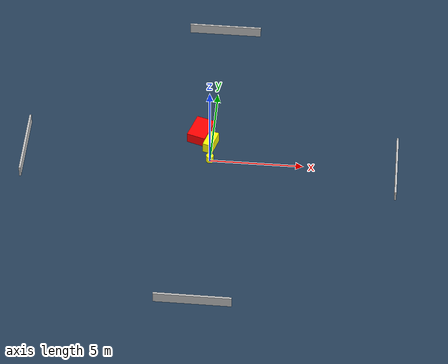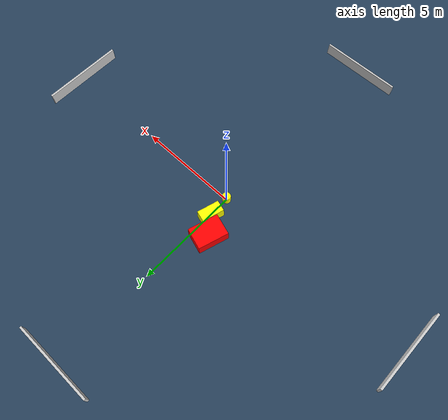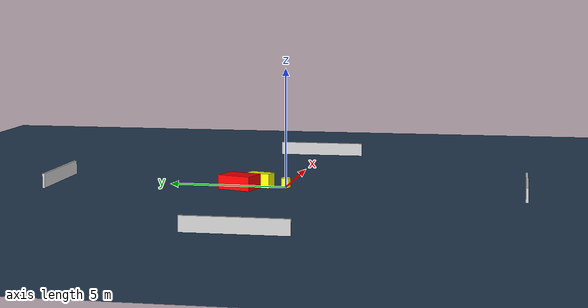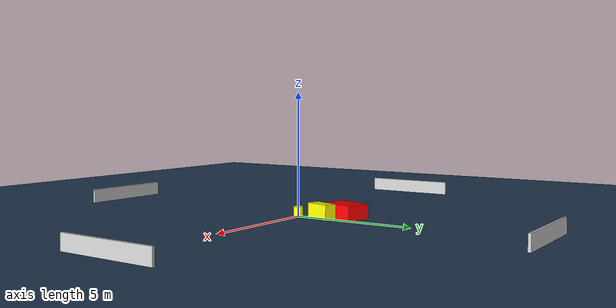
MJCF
<?xml version="1.0" ?>
<mujoco model="generated_environment">
  <option timestep="0.01" integrator="RK4" cone="elliptic"/>
  <default>
    <geom density="1"/>
  </default>
  <asset>
    <texture builtin="gradient" height="3072" name="skybox" rgb1="0.3 0.5 0.7" rgb2="0 0 0" type="skybox" width="512"/>
    <texture builtin="checker" height="300" name="groundplane" rgb1="0.2 0.3 0.4" rgb2="0.1 0.2 0.3" type="2d" width="300"/>
    <material name="groundplane" reflectance="0.2" texrepeat="5 5" texture="groundplane"/>
  </asset>
  <worldbody>
    <light dir="0 0 -1" directional="true" pos="0 0 1.5"/>
    <geom condim="3" friction="0.5 0.005 0.001" material="groundplane" name="floor" pos="0 0 0" size="0 0 0.05" type="plane"/>
    <body name="walls">
      <geom name="wall_1" condim="4" pos="-10.0 0.0 0.3" rgba="0.800000011920929 0.800000011920929 0.800000011920929 1.0" size="0.05 2.0 0.3" type="box"/>
      <geom name="wall_2" condim="4" pos="10.0 0.0 0.3" rgba="0.800000011920929 0.800000011920929 0.800000011920929 1.0" size="0.05 2.0 0.3" type="box"/>
      <geom name="wall_3" condim="4" pos="0.0 -10.0 0.3" rgba="0.800000011920929 0.800000011920929 0.800000011920929 1.0" size="2.0 0.05 0.3" type="box"/>
      <geom name="wall_4" condim="4" pos="0.0 10.0 0.3" rgba="0.800000011920929 0.800000011920929 0.800000011920929 1.0" size="2.0 0.05 0.3" type="box"/>
    </body>
    <body name="robot">
      <joint name="joint_x" type="slide" pos="0 0 0" axis="1 0 0"/>
      <joint name="joint_y" type="slide" pos="0 0 0" axis="0 1 0"/>
      <geom name="robot" type="cylinder" pos="0.0 0.0 0.2" size="0.2 0.2 0.0" mass="5.0" friction="1.0 0.005 0.0001" condim="4" rgba="1.0 1.0 0.0 1.0"/>
    </body>
    <body name="obstacle_1_movable">
      <geom name="obstacle_1_movable" condim="4" pos="-0.04612518677781898 1.0864279721538759 0.3" euler="0 0 343.6051004016312" friction="0.0 0.005 0.001" rgba="1.0 1.0 0.0 1.0" size="0.26259540141202686 0.5308655539750476 0.3" type="box" mass="0.1"/>
      <joint type="free"/>
    </body>
    <body name="obstacle_2_static">
      <geom name="obstacle_2_static" condim="4" pos="-0.64801513501244 1.8609300830973174 0.3" euler="0 0 342.4779646829556" friction="0.0 0.005 0.001" rgba="1.0 0.0 0.0 1.0" size="0.5143845744677371 0.7303262309677823 0.3" type="box"/>
    </body>
  </worldbody>
  <actuator>
    <motor name="actuator_x" joint="joint_x" gear="1" ctrlrange="-1 1"/>
    <motor name="actuator_y" joint="joint_y" gear="1" ctrlrange="-1 1"/>
  </actuator>
</mujoco>
